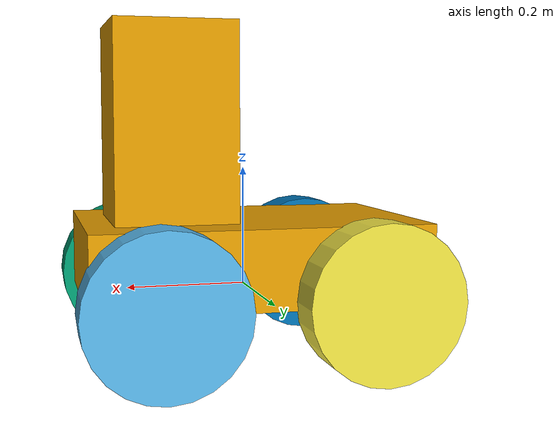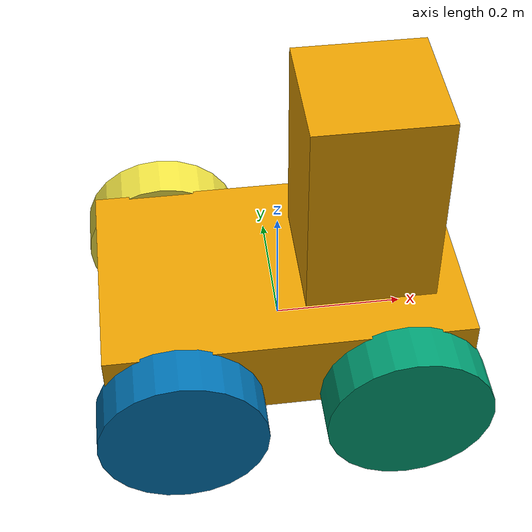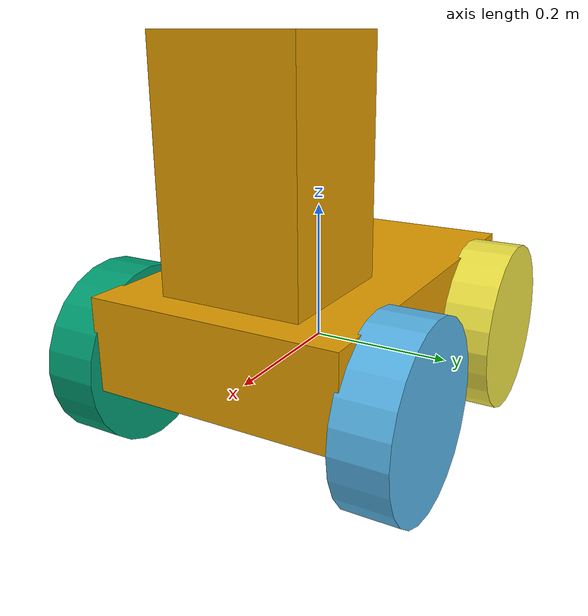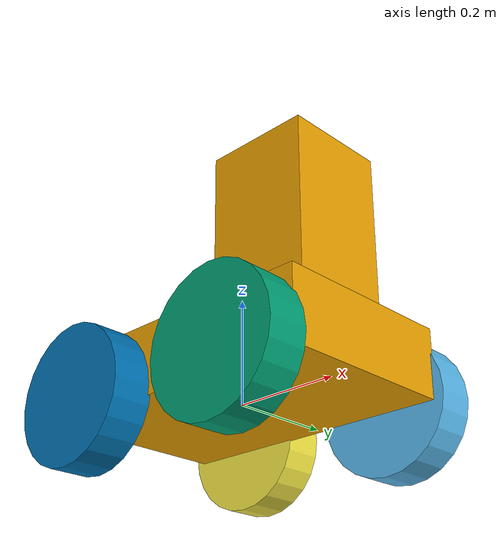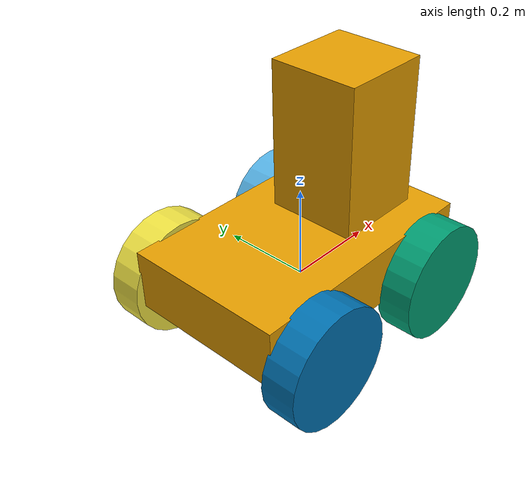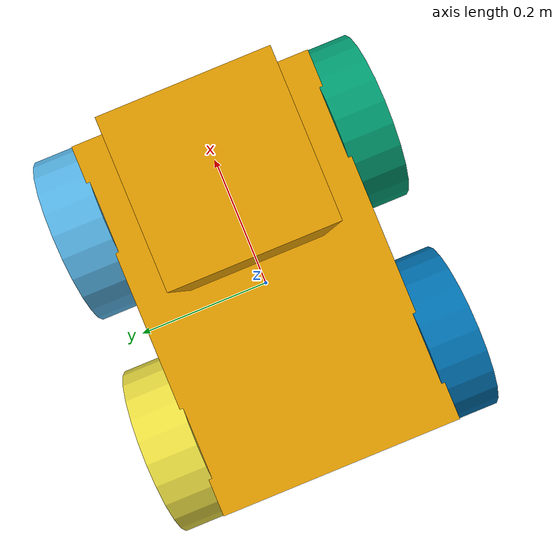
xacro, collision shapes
<?xml version='1.0' encoding='utf-8'?>
<robot name='coro_jeanine_sensor_config_1' xmlns:xacro="http://ros.org/wiki/xacro">
  <xacro:arg name="name" default="coro_jeanine_sensor_config_1"/>
  <xacro:property name="robot_namespace" value="$(arg name)"/>
  <link name='${robot_namespace}/base_link'>
    <inertial>
      <origin xyz='0 0 0.09' rpy='0 -0 0'/>
      <mass value='26.6'/>
      <inertia ixx='0.387' ixy='0' ixz='0' iyy='0.79' iyz='0' izz='0.962'/>
    </inertial>
    <collision name='chassis_collision'>
      <origin xyz='0 0 0.05' rpy='0 -0 0'/>
      <geometry>
        <box size='0.555 0.355 0.13'/>
      </geometry>
    </collision>
    <collision name='tower_collision'>
      <origin xyz='0.13 0 0.27' rpy='0 -0 0'/>
      <geometry>
        <box size='0.2 0.2 0.34'/>
      </geometry>
    </collision>
    <visual name='chassis_main_visual'>
      <origin xyz='0 0 0.07' rpy='0 -0 0'/>
      <geometry>
        <box size='0.38 0.3 0.13'/>
      </geometry>
    </visual>
    <visual name='wheel_mount_visual_front_left'>
      <origin xyz='0.17 0.12 0' rpy='0 -0 0'/>
      <geometry>
        <box size='0.03 0.06 0.02'/>
      </geometry>
    </visual>
    <visual name='wheel_mount_visual_front_right'>
      <origin xyz='0.17 -0.12 0' rpy='0 -0 0'/>
      <geometry>
        <box size='0.03 0.06 0.02'/>
      </geometry>
    </visual>
    <visual name='wheel_mount_visual_rear_left'>
      <origin xyz='-0.17 0.12 0' rpy='0 -0 0'/>
      <geometry>
        <box size='0.03 0.06 0.02'/>
      </geometry>
    </visual>
    <visual name='wheel_mount_visual_rear_right'>
      <origin xyz='-0.17 -0.12 0' rpy='0 -0 0'/>
      <geometry>
        <box size='0.03 0.06 0.02'/>
      </geometry>
    </visual>
    <visual name='emergency_stop_bottom_visual'>
      <origin xyz='0.11 0.125 0.145' rpy='0 -0 0'/>
      <geometry>
        <cylinder radius='0.015' length='0.015'/>
      </geometry>
    </visual>
    <visual name='emergency_stop_top_visual'>
      <origin xyz='0.11 0.125 0.155' rpy='0 -0 0'/>
      <geometry>
        <cylinder radius='0.02' length='0.005'/>
      </geometry>
    </visual>
    <visual name='plate1_visual'>
      <origin xyz='0 0 0.435' rpy='0 -0 0'/>
      <geometry>
        <box size='0.2 0.2 0.005'/>
      </geometry>
    </visual>
    <visual name='plate2_visual'>
      <origin xyz='0 0 0.325' rpy='0 -0 0'/>
      <geometry>
        <box size='0.2 0.2 0.005'/>
      </geometry>
    </visual>
    <visual name='plate3_visual_was12'>
      <origin xyz='0 0 0.135' rpy='0 -0 0'/>
      <geometry>
        <box size='0.2 0.2 0.005'/>
      </geometry>
    </visual>
    <visual name='beam1_visual'>
      <origin xyz='0.091 0.091 0.285' rpy='0 -0 0'/>
      <geometry>
        <box size='0.02 0.02 0.3'/>
      </geometry>
    </visual>
    <visual name='beam2_visual'>
      <origin xyz='0.091 -0.091 0.285' rpy='0 -0 0'/>
      <geometry>
        <box size='0.02 0.02 0.3'/>
      </geometry>
    </visual>
    <visual name='beam3_visual'>
      <origin xyz='-0.091 0.091 0.285' rpy='0 -0 0'/>
      <geometry>
        <box size='0.02 0.02 0.3'/>
      </geometry>
    </visual>
    <visual name='beam4_visual'>
      <origin xyz='-0.091 -0.091 0.285' rpy='0 -0 0'/>
      <geometry>
        <box size='0.02 0.02 0.3'/>
      </geometry>
    </visual>
    <visual name='d435i_realsense_camera_visual'>
      <origin xyz='0.08 0 0.408' rpy='0 0.52 0'/>
      <geometry>
        <mesh filename='package://coro_jeanine_sensor_config_1/meshes/realsense_d435.dae' scale='0.001 0.001 0.001'/>
      </geometry>
    </visual>
    <visual name='vlp16_visual1'>
      <origin xyz='0 0 0.327' rpy='0 -0 0'/>
      <geometry>
        <mesh filename='package://coro_jeanine_sensor_config_1/meshes/VLP16_base_1.dae' scale='1 1 1'/>
      </geometry>
    </visual>
    <visual name='vlp_visual2'>
      <origin xyz='0 0 0.327' rpy='0 -0 0'/>
      <geometry>
        <mesh filename='package://coro_jeanine_sensor_config_1/meshes/VLP16_base_2.dae' scale='1 1 1'/>
      </geometry>
    </visual>
    <visual name='vlp_visual3'>
      <origin xyz='0 0 0.327' rpy='0 -0 0'/>
      <geometry>
        <mesh filename='package://coro_jeanine_sensor_config_1/meshes/VLP16_scan.dae' scale='1 1 1'/>
      </geometry>
    </visual>
    <visual name='camera_front_visual'>
      <origin xyz='0.09 0.06 0.42' rpy='0 -0 0'/>
      <geometry>
        <box size='0.01 0.03 0.03'/>
      </geometry>
    </visual>
    <visual name='camera_lens_front_visual'>
      <origin xyz='0.1 0.06 0.42' rpy='0 1.5708 0'/>
      <geometry>
        <cylinder radius='0.005' length='0.011'/>
      </geometry>
    </visual>
    <visual name='camera_rear_visual'>
      <origin xyz='-0.09 0 0.42' rpy='0 -0 0'/>
      <geometry>
        <box size='0.01 0.03 0.03'/>
      </geometry>
    </visual>
    <visual name='camera_lens_rear_visual'>
      <origin xyz='-0.1 0 0.42' rpy='0 1.5708 0'/>
      <geometry>
        <cylinder radius='0.005' length='0.011'/>
      </geometry>
    </visual>
    <visual name='camera_left_visual'>
      <origin xyz='0 0.09 0.42' rpy='0 -0 0'/>
      <geometry>
        <box size='0.03 0.01 0.03'/>
      </geometry>
    </visual>
    <visual name='camera_lens_left_visual'>
      <origin xyz='0 0.1 0.42' rpy='1.5708 -0 0'/>
      <geometry>
        <cylinder radius='0.005' length='0.011'/>
      </geometry>
    </visual>
    <visual name='camera_right_visual'>
      <origin xyz='0 -0.09 0.42' rpy='0 -0 0'/>
      <geometry>
        <box size='0.03 0.01 0.03'/>
      </geometry>
    </visual>
    <visual name='camera_lens_right_visual'>
      <origin xyz='0 -0.1 0.42' rpy='1.5708 -0 0'/>
      <geometry>
        <cylinder radius='0.005' length='0.011'/>
      </geometry>
    </visual>
    <visual name='light_front_visual'>
      <origin xyz='0.09 0 0.457' rpy='0 -0 0'/>
      <geometry>
        <box size='0.04 0.13 0.04'/>
      </geometry>
    </visual>
    <visual name='light_rear_visual'>
      <origin xyz='-0.09 0 0.457' rpy='0 -0 0'/>
      <geometry>
        <box size='0.04 0.12 0.04'/>
      </geometry>
    </visual>
    <visual name='light_left_visual'>
      <origin xyz='0 0.09 0.457' rpy='0 -0 0'/>
      <geometry>
        <box size='0.12 0.04 0.04'/>
      </geometry>
    </visual>
    <visual name='light_right_visual'>
      <origin xyz='0 -0.09 0.457' rpy='0 -0 0'/>
      <geometry>
        <box size='0.12 0.04 0.04'/>
      </geometry>
    </visual>
  </link>
  <sensor name='imu_sensor' update_rate='50'>
    <parent link='${robot_namespace}/base_link'/>
    <origin xyz='0 0 0' rpy='0 -0 0'/>
  </sensor>
  <sensor name='magnetometer' update_rate='50'>
    <parent link='${robot_namespace}/base_link'/>
    <origin xyz='0 0 0' rpy='0 -0 0'/>
  </sensor>
  <sensor name='rgbd_front' update_rate='30'>
    <parent link='${robot_namespace}/base_link'/>
    <origin xyz='0.11 0 0.408' rpy='0 0.52 0'/>
    <camera>
      <image width='640' height='360' format='R8G8B8' hfov='1.50098' near='0.01' far='300' />
    </camera>
  </sensor>
  <sensor name='camera_front' update_rate='25'>
    <parent link='${robot_namespace}/base_link'/>
    <origin xyz='0.11 0.06 0.42' rpy='0 -0 0'/>
    <camera>
      <image width='720' height='1080' format='R8G8B8' hfov='1.658' near='0.01' far='300' />
    </camera>
  </sensor>
  <sensor name='camera_rear' update_rate='25'>
    <parent link='${robot_namespace}/base_link'/>
    <origin xyz='-0.11 0 0.42' rpy='0 -0 3.14159'/>
    <camera>
      <image width='720' height='1080' format='R8G8B8' hfov='1.658' near='0.01' far='300' />
    </camera>
  </sensor>
  <sensor name='camera_left' update_rate='25'>
    <parent link='${robot_namespace}/base_link'/>
    <origin xyz='0 0.11 0.42' rpy='0 -0 1.5708'/>
    <camera>
      <image width='720' height='1080' format='R8G8B8' hfov='1.658' near='0.01' far='300' />
    </camera>
  </sensor>
  <sensor name='camera_right' update_rate='25'>
    <parent link='${robot_namespace}/base_link'/>
    <origin xyz='0 -0.11 0.42' rpy='0 0 -1.5708'/>
    <camera>
      <image width='720' height='1080' format='R8G8B8' hfov='1.658' near='0.01' far='300' />
    </camera>
  </sensor>
  <sensor name='front_laser' update_rate='10'>
    <parent link='${robot_namespace}/base_link'/>
    <origin xyz='0 0 0.365' rpy='0 -0 0'/>
  </sensor>
  <link name='${robot_namespace}/front_left_wheel'>
    <inertial>
      <origin xyz='0 0 0' rpy='0 -0 0'/>
      <mass value='5'/>
      <inertia ixx='0.0153' ixy='0' ixz='0' iyy='0.025' iyz='0' izz='0.0153'/>
    </inertial>
    <collision name='front_left_wheel_collision'>
      <origin xyz='0 0 0' rpy='-1.5708 0 0'/>
      <geometry>
        <cylinder radius='0.1275' length='0.075'/>
      </geometry>
    </collision>
    <visual name='front_left_wheel_tire_visual'>
      <origin xyz='0 0 0' rpy='1.5708 -0 0'/>
      <geometry>
        <mesh filename='package://coro_jeanine_sensor_config_1/meshes/wheel_left.dae' scale='1.22 1.22 1.71'/>
      </geometry>
    </visual>
    <visual name='front_left_wheel_axle_visual'>
      <origin xyz='0 -0.055 0' rpy='1.5708 -0 0'/>
      <geometry>
        <cylinder radius='0.007' length='0.05'/>
      </geometry>
    </visual>
  </link>
  <link name='${robot_namespace}/front_right_wheel'>
    <inertial>
      <origin xyz='0 0 0' rpy='0 -0 0'/>
      <mass value='5'/>
      <inertia ixx='0.0153' ixy='0' ixz='0' iyy='0.025' iyz='0' izz='0.0153'/>
    </inertial>
    <collision name='front_right_wheel_collision'>
      <origin xyz='0 0 0' rpy='1.5708 -0 0'/>
      <geometry>
        <cylinder radius='0.1275' length='0.075'/>
      </geometry>
    </collision>
    <visual name='front_right_wheel_tire_visual'>
      <origin xyz='0 0 0' rpy='1.5708 -0 0'/>
      <geometry>
        <mesh filename='package://coro_jeanine_sensor_config_1/meshes/wheel_right.dae' scale='1.22 1.22 1.71'/>
      </geometry>
    </visual>
    <visual name='front_right_wheel_axle_visual'>
      <origin xyz='0 0.055 0' rpy='1.5708 -0 0'/>
      <geometry>
        <cylinder radius='0.007' length='0.05'/>
      </geometry>
    </visual>
  </link>
  <link name='${robot_namespace}/rear_left_wheel'>
    <inertial>
      <origin xyz='0 0 0' rpy='0 -0 0'/>
      <mass value='5'/>
      <inertia ixx='0.0153' ixy='0' ixz='0' iyy='0.025' iyz='0' izz='0.0153'/>
    </inertial>
    <collision name='rear_left_wheel_collision'>
      <origin xyz='0 0 0' rpy='-1.5708 0 0'/>
      <geometry>
        <cylinder radius='0.1275' length='0.075'/>
      </geometry>
    </collision>
    <visual name='rear_left_wheel_tire_visual'>
      <origin xyz='0 0 0' rpy='1.5708 -0 0'/>
      <geometry>
        <mesh filename='package://coro_jeanine_sensor_config_1/meshes/wheel_left.dae' scale='1.22 1.22 1.71'/>
      </geometry>
    </visual>
    <visual name='rear_left_wheel_axle_visual'>
      <origin xyz='0 -0.055 0' rpy='1.5708 -0 0'/>
      <geometry>
        <cylinder radius='0.007' length='0.05'/>
      </geometry>
    </visual>
  </link>
  <link name='${robot_namespace}/rear_right_wheel'>
    <inertial>
      <origin xyz='0 0 0' rpy='0 -0 0'/>
      <mass value='5'/>
      <inertia ixx='0.0153' ixy='0' ixz='0' iyy='0.025' iyz='0' izz='0.0153'/>
    </inertial>
    <collision name='rear_right_wheel_collision'>
      <origin xyz='0 0 0' rpy='1.5708 -0 0'/>
      <geometry>
        <cylinder radius='0.1275' length='0.075'/>
      </geometry>
    </collision>
    <visual name='rear_right_wheel_tire_visual'>
      <origin xyz='0 0 0' rpy='1.5708 -0 0'/>
      <geometry>
        <mesh filename='package://coro_jeanine_sensor_config_1/meshes/wheel_right.dae' scale='1.22 1.22 1.71'/>
      </geometry>
    </visual>
    <visual name='rear_right_wheel_axle_visual'>
      <origin xyz='0 0.055 0' rpy='1.5708 -0 0'/>
      <geometry>
        <cylinder radius='0.007' length='0.05'/>
      </geometry>
    </visual>
  </link>
  <joint name='front_left_wheel_joint' type='revolute'>
    <origin xyz='0.17 0.21 0' rpy='0 -0 0'/>
    <parent link='${robot_namespace}/base_link'/>
    <child link='${robot_namespace}/front_left_wheel'/>
    <axis xyz='0 1 0'/>
    <limit lower='-1.79769e+308' upper='1.79769e+308' effort='10' velocity='19.61'/>
  </joint>
  <joint name='rear_left_wheel_joint' type='revolute'>
    <origin xyz='-0.17 0.21 0' rpy='0 -0 0'/>
    <parent link='${robot_namespace}/base_link'/>
    <child link='${robot_namespace}/rear_left_wheel'/>
    <axis xyz='0 1 0'/>
    <limit lower='-1.79769e+308' upper='1.79769e+308' effort='10' velocity='19.61'/>
  </joint>
  <joint name='rear_right_wheel_joint' type='revolute'>
    <origin xyz='-0.17 -0.21 0' rpy='0 -0 0'/>
    <parent link='${robot_namespace}/base_link'/>
    <child link='${robot_namespace}/rear_right_wheel'/>
    <axis xyz='0 1 0'/>
    <limit lower='-1.79769e+308' upper='1.79769e+308' effort='10' velocity='19.61'/>
  </joint>
  <joint name='front_right_wheel_joint' type='revolute'>
    <origin xyz='0.17 -0.21 0' rpy='0 -0 0'/>
    <parent link='${robot_namespace}/base_link'/>
    <child link='${robot_namespace}/front_right_wheel'/>
    <axis xyz='0 1 0'/>
    <limit lower='-1.79769e+308' upper='1.79769e+308' effort='10' velocity='19.61'/>
  </joint>
</robot>
